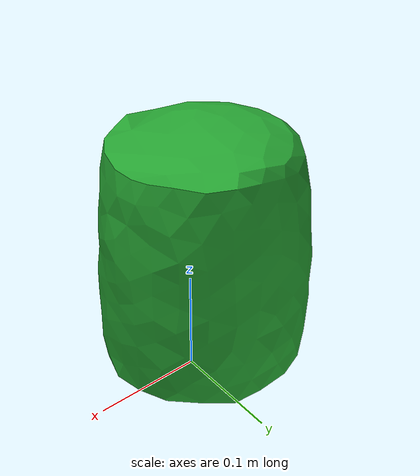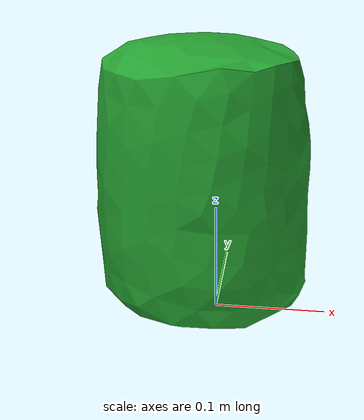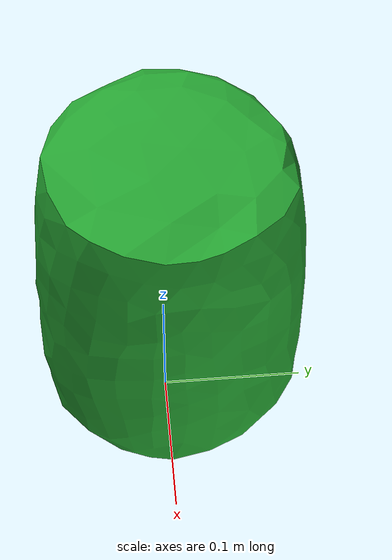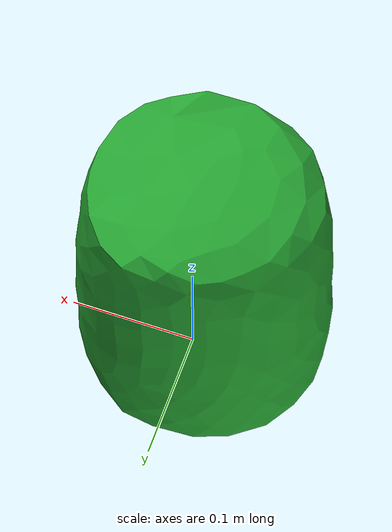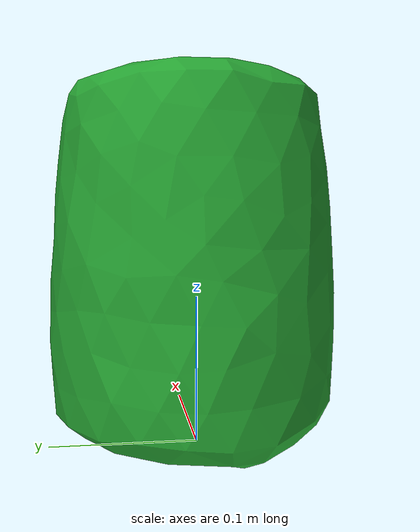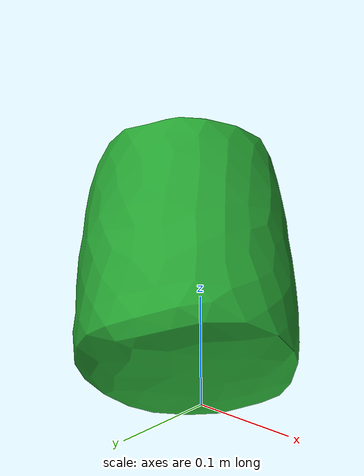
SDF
<?xml version="1.0" ?><sdf version="1.5"><model name="maisels-barrel1">
<link name="link">
<pose>0 0 0 0 0 0</pose>
<inertial>
<pose>-0.012027 0.00553 0.129432 0 0 0</pose>
<mass>0.535</mass>
<inertia>
<ixx>0.00394764</ixx>
<ixy>0</ixy><iyy>0.00400731</iyy>
<ixz>0</ixz><iyz>0</iyz><izz>0.00303729</izz>
</inertia>
</inertial>
<visual name="visual">
<pose>0 0 0 0 0 0</pose>
<geometry><mesh><uri>model://maisels-barrel1/meshes/maisels-barrel1.dae</uri></mesh></geometry>
<material><script><uri>file://media/materials/scripts/gazebo.material</uri><name>Gazebo/GreenGlow</name></script></material></visual>
<collision name="collision"><pose>0 0 0 0 0 0</pose><geometry><mesh><uri>model://maisels-barrel1/meshes/maisels-barrel1.dae</uri></mesh></geometry>
<surface><friction><ode><mu>1.000000</mu><mu2>1.000000</mu2></ode></friction></surface>
</collision></link></model></sdf>
